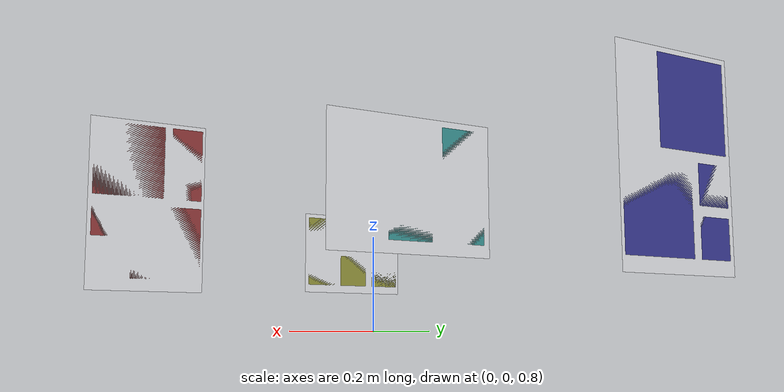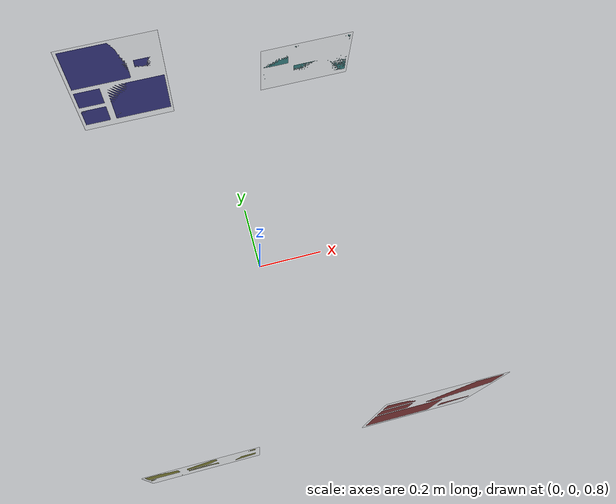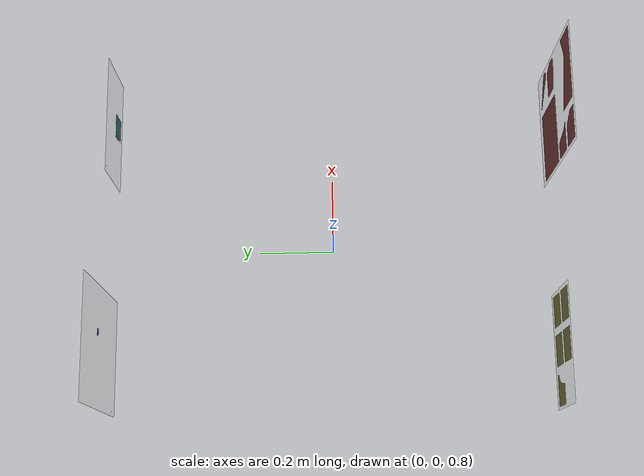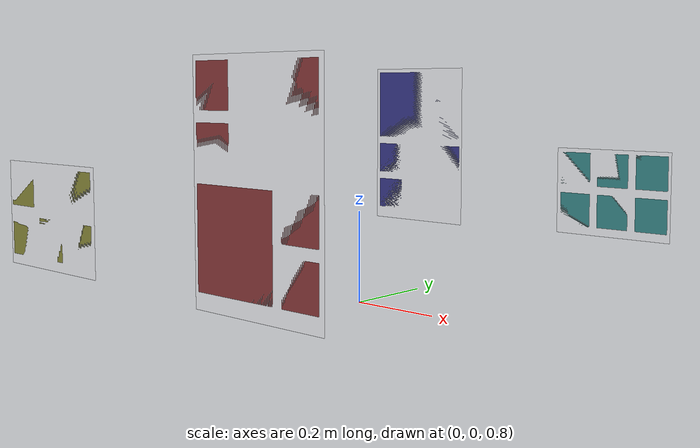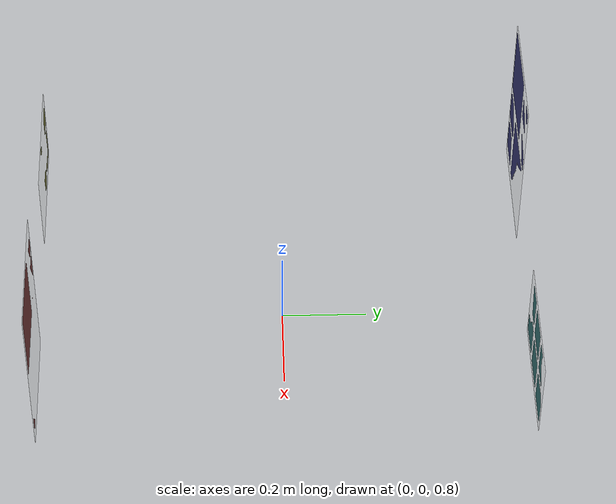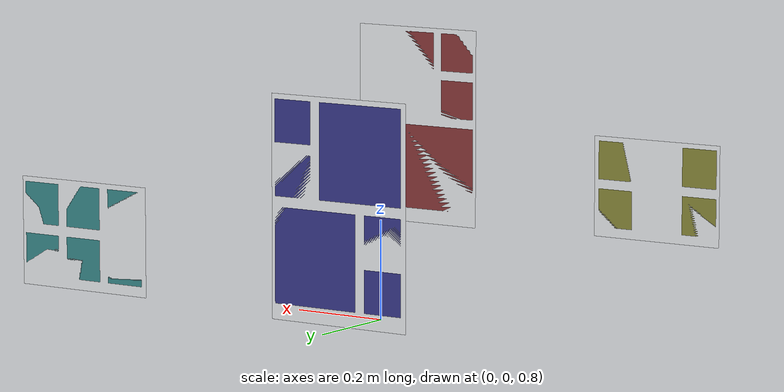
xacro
<?xml version="1.0" encoding="utf-8"?>
<robot xmlns:xacro="http://www.ros.org/wiki/xacro" name="calibration_all">

  <link name="base_link"/>

  <xacro:include filename="calibration_1a.xacro"/>
  <joint name="calibration_1a_joint" type="fixed">
    <parent link="base_link"/>
    <child link="calibration_1a_base_link"/>
    <origin rpy="0 1.57079 1.57079" xyz="0.445 -0.5675 1.32"/>
  </joint>

  <xacro:include filename="calibration_1b.xacro"/>
  <joint name="calibration_1b_joint" type="fixed">
    <parent link="base_link"/>
    <child link="calibration_1b_base_link"/>
    <origin rpy="0 1.57079 1.57079" xyz="-0.148 -0.5675 1.12"/>
  </joint>

  <xacro:include filename="calibration_2a.xacro"/>
  <joint name="calibration_2a_joint" type="fixed">
    <parent link="base_link"/>
    <child link="calibration_2a_base_link"/>
    <origin rpy="0 1.57079 -1.57079" xyz="-0.445 0.5675 1.32"/>
  </joint>

  <xacro:include filename="calibration_2b.xacro"/>
  <joint name="calibration_2b_joint" type="fixed">
    <parent link="base_link"/>
    <child link="calibration_2b_base_link"/>
    <origin rpy="0 1.57079 -1.57079" xyz="0.148 0.5675 1.12"/>
  </joint>

</robot>

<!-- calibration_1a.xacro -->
<robot xmlns:xacro="http://www.ros.org/wiki/xacro" name="calibration_1a">

  <!-- upper left corner of grid  -->
  <link name="calibration_1a_base_link">
    <visual>
     <origin xyz ="0.21 0.1485 0" rpy ="0 0 0"/>
     <geometry>
       <box size="0.42 0.297 1e-3" />
     </geometry>
     <material name="TransparentWhite">
       <color rgba="1 1 1 0.2"/>
     </material>
   </visual>
  </link>

  <!-- aruco 901 -->
  <link name="aruco_901">
    <visual>
     <geometry>
       <box size="0.18 0.18 0.001" />
     </geometry>
     <material name="DarkRed">
       <color rgba="0.5 0.1 0.1 0.8"/>
     </material>
   </visual>
  </link>

  <!-- aruco 902   -->
  <link name="aruco_902">
    <visual>
     <geometry>
       <box size="0.08 0.08 0.001" />
     </geometry>
     <material name="DarkRed">
       <color rgba="0.5 0.1 0.1 0.8"/>
     </material>
   </visual>
  </link>

  <!-- aruco 903   -->
  <link name="aruco_903">
    <visual>
     <geometry>
       <box size="0.08 0.08 0.001" />
     </geometry>
     <material name="DarkRed">
       <color rgba="0.5 0.1 0.1 0.8"/>
     </material>
   </visual>
  </link>

  <!-- aruco 904   -->
  <link name="aruco_904">
    <visual>
     <geometry>
       <box size="0.08 0.08 0.001" />
     </geometry>
     <material name="DarkRed">
       <color rgba="0.5 0.1 0.1 0.8"/>
     </material>
   </visual>
  </link>

  <!-- aruco 905   -->
  <link name="aruco_905">
    <visual>
     <geometry>
       <box size="0.08 0.08 0.001" />
     </geometry>
     <material name="DarkRed">
       <color rgba="0.5 0.1 0.1 0.8"/>
     </material>
   </visual>
  </link>

  <!-- aruco 906   -->
  <link name="aruco_906">
    <visual>
     <geometry>
       <box size="0.18 0.18 0.001" />
     </geometry>
     <material name="DarkRed">
       <color rgba="0.5 0.1 0.1 0.8"/>
     </material>
   </visual>
  </link>

  <!-- position aruco markers -->
  <joint name="base_link-aruco_901" type="fixed">
    <origin rpy="0 0 0" xyz="0.1 0.1 0"/>
    <parent link="calibration_1a_base_link"/>
    <child link="aruco_901"/>
  </joint>

  <joint name="base_link-aruco_902" type="fixed">
    <origin rpy="0 0 0" xyz="0.05 0.25 0"/>
    <parent link="calibration_1a_base_link"/>
    <child link="aruco_902"/>
  </joint>

  <joint name="base_link-aruco_903" type="fixed">
    <origin rpy="0 0 0" xyz="0.15 0.25 0"/>
    <parent link="calibration_1a_base_link"/>
    <child link="aruco_903"/>
  </joint>

  <joint name="base_link-aruco_904" type="fixed">
    <origin rpy="0 0 0" xyz="0.25 0.05 0"/>
    <parent link="calibration_1a_base_link"/>
    <child link="aruco_904"/>
  </joint>

  <joint name="base_link-aruco_905" type="fixed">
    <origin rpy="0 0 0" xyz="0.35 0.05 0"/>
    <parent link="calibration_1a_base_link"/>
    <child link="aruco_905"/>
  </joint>

  <joint name="base_link-aruco_906" type="fixed">
    <origin rpy="0 0 0" xyz="0.3 0.2 0"/>
    <parent link="calibration_1a_base_link"/>
    <child link="aruco_906"/>
  </joint>

</robot>

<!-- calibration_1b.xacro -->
<robot xmlns:xacro="http://www.ros.org/wiki/xacro" name="calibration_1b">

  <!-- upper left corner of grid  -->
  <link name="calibration_1b_base_link">
    <visual>
     <origin xyz ="0.105 0.1485 0" rpy ="0 0 0"/>
     <geometry>
       <box size="0.21 0.297 1e-3" />
     </geometry>
     <material name="TransparentWhite">
       <color rgba="1 1 1 0.2"/>
     </material>
   </visual>
  </link>

  <!-- aruco 907 -->
  <link name="aruco_907">
    <visual>
     <geometry>
       <box size="0.08 0.08 0.001" />
     </geometry>
     <material name="Yellow">
       <color rgba="0.5 0.5 0.1 0.8"/>
     </material>
   </visual>
  </link>

  <!-- aruco 908   -->
  <link name="aruco_908">
    <visual>
     <geometry>
       <box size="0.08 0.08 0.001" />
     </geometry>
     <material name="Yellow">
       <color rgba="0.5 0.5 0.1 0.8"/>
     </material>
   </visual>
  </link>

  <!-- aruco 909   -->
  <link name="aruco_909">
    <visual>
     <geometry>
       <box size="0.08 0.08 0.001" />
     </geometry>
     <material name="Yellow">
       <color rgba="0.5 0.5 0.1 0.8"/>
     </material>
   </visual>
  </link>

  <!-- aruco 910   -->
  <link name="aruco_910">
    <visual>
     <geometry>
       <box size="0.08 0.08 0.001" />
     </geometry>
     <material name="Yellow">
       <color rgba="0.5 0.5 0.1 0.8"/>
     </material>
   </visual>
  </link>

  <!-- aruco 911   -->
  <link name="aruco_911">
    <visual>
     <geometry>
       <box size="0.08 0.08 0.001" />
     </geometry>
     <material name="Yellow">
       <color rgba="0.5 0.5 0.1 0.8"/>
     </material>
   </visual>
  </link>

  <!-- aruco 912   -->
  <link name="aruco_912">
    <visual>
     <geometry>
       <box size="0.08 0.08 0.001" />
     </geometry>
     <material name="Yellow">
       <color rgba="0.5 0.5 0.1 0.8"/>
     </material>
   </visual>
  </link>

  <!-- position aruco markers -->
  <joint name="base_link-aruco_907" type="fixed">
    <origin rpy="0 0 0" xyz="0.05 0.05 0"/>
    <parent link="calibration_1b_base_link"/>
    <child link="aruco_907"/>
  </joint>

  <joint name="base_link-aruco_908" type="fixed">
    <origin rpy="0 0 0" xyz="0.15 0.05 0"/>
    <parent link="calibration_1b_base_link"/>
    <child link="aruco_908"/>
  </joint>

  <joint name="base_link-aruco_909" type="fixed">
    <origin rpy="0 0 0" xyz="0.05 0.15 0"/>
    <parent link="calibration_1b_base_link"/>
    <child link="aruco_909"/>
  </joint>

  <joint name="base_link-aruco_910" type="fixed">
    <origin rpy="0 0 0" xyz="0.15 0.15 0"/>
    <parent link="calibration_1b_base_link"/>
    <child link="aruco_910"/>
  </joint>

  <joint name="base_link-aruco_911" type="fixed">
    <origin rpy="0 0 0" xyz="0.05 0.25 0"/>
    <parent link="calibration_1b_base_link"/>
    <child link="aruco_911"/>
  </joint>

  <joint name="base_link-aruco_912" type="fixed">
    <origin rpy="0 0 0" xyz="0.15 0.25 0"/>
    <parent link="calibration_1b_base_link"/>
    <child link="aruco_912"/>
  </joint>

</robot>

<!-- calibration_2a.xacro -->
<robot xmlns:xacro="http://www.ros.org/wiki/xacro" name="calibration_2a">

  <!-- upper left corner of grid  -->
  <link name="calibration_2a_base_link">
    <visual>
     <origin xyz ="0.21 0.1485 0" rpy ="0 0 0"/>
     <geometry>
       <box size="0.42 0.297 1e-3" />
     </geometry>
     <material name="TransparentWhite">
       <color rgba="1 1 1 0.2"/>
     </material>
   </visual>
  </link>

  <!-- aruco 913 -->
  <link name="aruco_913">
    <visual>
     <geometry>
       <box size="0.18 0.18 0.001" />
     </geometry>
     <material name="DarkBlue">
       <color rgba="0.1 0.1 0.5 0.8"/>
     </material>
   </visual>
  </link>

  <!-- aruco 914   -->
  <link name="aruco_914">
    <visual>
     <geometry>
       <box size="0.08 0.08 0.001" />
     </geometry>
     <material name="DarkBlue">
       <color rgba="0.1 0.1 0.5 0.8"/>
     </material>
   </visual>
  </link>

  <!-- aruco 915   -->
  <link name="aruco_915">
    <visual>
     <geometry>
       <box size="0.08 0.08 0.001" />
     </geometry>
     <material name="DarkBlue">
       <color rgba="0.1 0.1 0.5 0.8"/>
     </material>
   </visual>
  </link>

  <!-- aruco 916   -->
  <link name="aruco_916">
    <visual>
     <geometry>
       <box size="0.08 0.08 0.001" />
     </geometry>
     <material name="DarkBlue">
       <color rgba="0.1 0.1 0.5 0.8"/>
     </material>
   </visual>
  </link>

  <!-- aruco 917   -->
  <link name="aruco_917">
    <visual>
     <geometry>
       <box size="0.08 0.08 0.001" />
     </geometry>
     <material name="DarkBlue">
       <color rgba="0.1 0.1 0.5 0.8"/>
     </material>
   </visual>
  </link>

  <!-- aruco 918   -->
  <link name="aruco_918">
    <visual>
     <geometry>
       <box size="0.18 0.18 0.001" />
     </geometry>
     <material name="DarkBlue">
       <color rgba="0.1 0.1 0.5 0.8"/>
     </material>
   </visual>
  </link>

  <!-- position aruco markers -->
  <joint name="base_link-aruco_913" type="fixed">
    <origin rpy="0 0 0" xyz="0.1 0.1 0"/>
    <parent link="calibration_2a_base_link"/>
    <child link="aruco_913"/>
  </joint>

  <joint name="base_link-aruco_914" type="fixed">
    <origin rpy="0 0 0" xyz="0.05 0.25 0"/>
    <parent link="calibration_2a_base_link"/>
    <child link="aruco_914"/>
  </joint>

  <joint name="base_link-aruco_915" type="fixed">
    <origin rpy="0 0 0" xyz="0.15 0.25 0"/>
    <parent link="calibration_2a_base_link"/>
    <child link="aruco_915"/>
  </joint>

  <joint name="base_link-aruco_916" type="fixed">
    <origin rpy="0 0 0" xyz="0.25 0.05 0"/>
    <parent link="calibration_2a_base_link"/>
    <child link="aruco_916"/>
  </joint>

  <joint name="base_link-aruco_917" type="fixed">
    <origin rpy="0 0 0" xyz="0.35 0.05 0"/>
    <parent link="calibration_2a_base_link"/>
    <child link="aruco_917"/>
  </joint>

  <joint name="base_link-aruco_918" type="fixed">
    <origin rpy="0 0 0" xyz="0.3 0.2 0"/>
    <parent link="calibration_2a_base_link"/>
    <child link="aruco_918"/>
  </joint>

</robot>

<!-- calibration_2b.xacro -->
<robot xmlns:xacro="http://www.ros.org/wiki/xacro" name="calibration_2b">

  <!-- upper left corner of grid  -->
  <link name="calibration_2b_base_link">
    <visual>
     <origin xyz ="0.105 0.1485 0" rpy ="0 0 0"/>
     <geometry>
       <box size="0.21 0.297 1e-3" />
     </geometry>
     <material name="TransparentWhite">
       <color rgba="1 1 1 0.2"/>
     </material>
   </visual>
  </link>

  <!-- aruco 919 -->
  <link name="aruco_919">
    <visual>
     <geometry>
       <box size="0.08 0.08 0.001" />
     </geometry>
     <material name="Cyan">
       <color rgba="0.1 0.5 0.5 0.8"/>
     </material>
   </visual>
  </link>

  <!-- aruco 920   -->
  <link name="aruco_920">
    <visual>
     <geometry>
       <box size="0.08 0.08 0.001" />
     </geometry>
     <material name="Cyan">
       <color rgba="0.1 0.5 0.5 0.8"/>
     </material>
   </visual>
  </link>

  <!-- aruco 921   -->
  <link name="aruco_921">
    <visual>
     <geometry>
       <box size="0.08 0.08 0.001" />
     </geometry>
     <material name="Cyan">
       <color rgba="0.1 0.5 0.5 0.8"/>
     </material>
   </visual>
  </link>

  <!-- aruco 922   -->
  <link name="aruco_922">
    <visual>
     <geometry>
       <box size="0.08 0.08 0.001" />
     </geometry>
     <material name="Cyan">
       <color rgba="0.1 0.5 0.5 0.8"/>
     </material>
   </visual>
  </link>

  <!-- aruco 923   -->
  <link name="aruco_923">
    <visual>
     <geometry>
       <box size="0.08 0.08 0.001" />
     </geometry>
     <material name="Cyan">
       <color rgba="0.1 0.5 0.5 0.8"/>
     </material>
   </visual>
  </link>

  <!-- aruco 924   -->
  <link name="aruco_924">
    <visual>
     <geometry>
       <box size="0.08 0.08 0.001" />
     </geometry>
     <material name="Cyan">
       <color rgba="0.1 0.5 0.5 0.8"/>
     </material>
   </visual>
  </link>

  <!-- position aruco markers -->
  <joint name="base_link-aruco_919" type="fixed">
    <origin rpy="0 0 0" xyz="0.05 0.05 0"/>
    <parent link="calibration_2b_base_link"/>
    <child link="aruco_919"/>
  </joint>

  <joint name="base_link-aruco_920" type="fixed">
    <origin rpy="0 0 0" xyz="0.15 0.05 0"/>
    <parent link="calibration_2b_base_link"/>
    <child link="aruco_920"/>
  </joint>

  <joint name="base_link-aruco_921" type="fixed">
    <origin rpy="0 0 0" xyz="0.05 0.15 0"/>
    <parent link="calibration_2b_base_link"/>
    <child link="aruco_921"/>
  </joint>

  <joint name="base_link-aruco_922" type="fixed">
    <origin rpy="0 0 0" xyz="0.15 0.15 0"/>
    <parent link="calibration_2b_base_link"/>
    <child link="aruco_922"/>
  </joint>

  <joint name="base_link-aruco_923" type="fixed">
    <origin rpy="0 0 0" xyz="0.05 0.25 0"/>
    <parent link="calibration_2b_base_link"/>
    <child link="aruco_923"/>
  </joint>

  <joint name="base_link-aruco_924" type="fixed">
    <origin rpy="0 0 0" xyz="0.15 0.25 0"/>
    <parent link="calibration_2b_base_link"/>
    <child link="aruco_924"/>
  </joint>

</robot>
